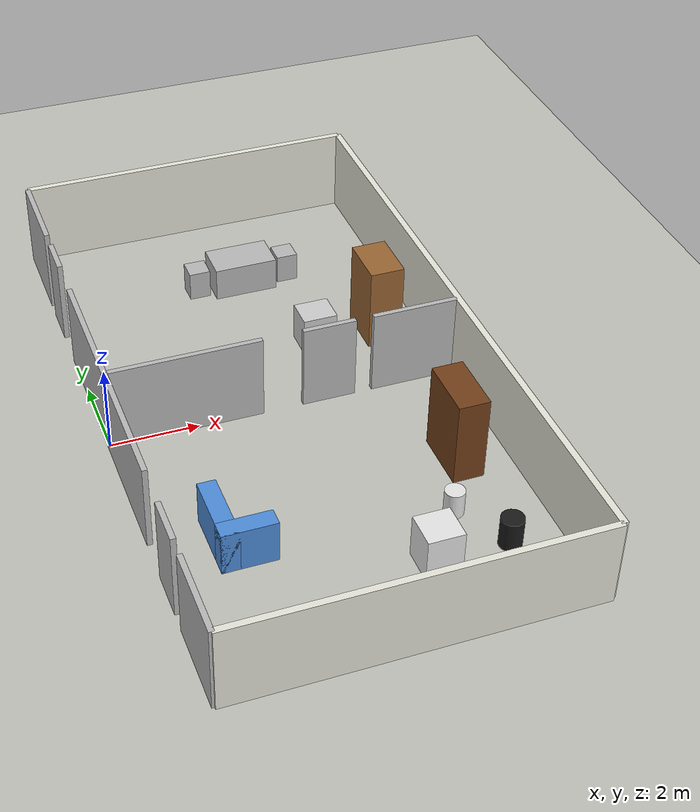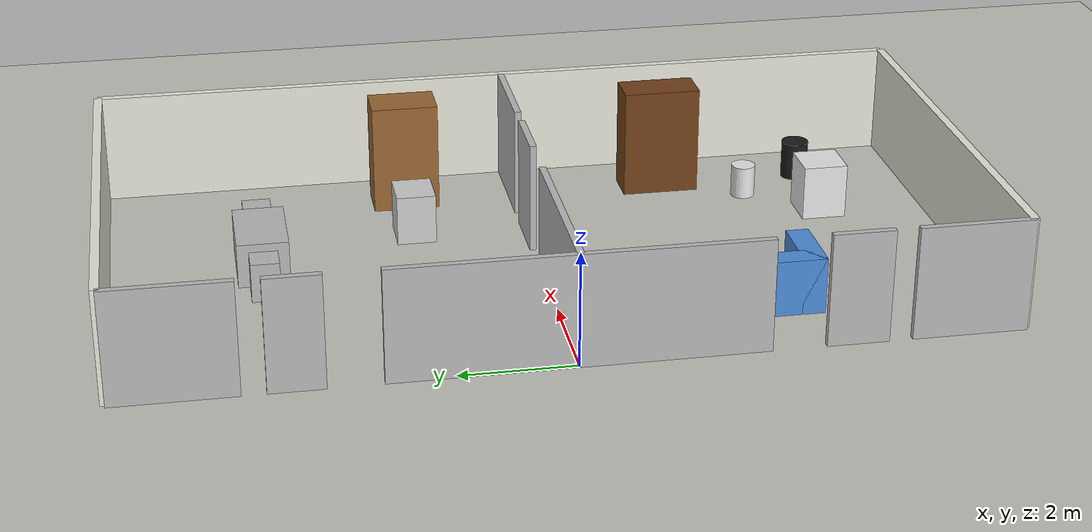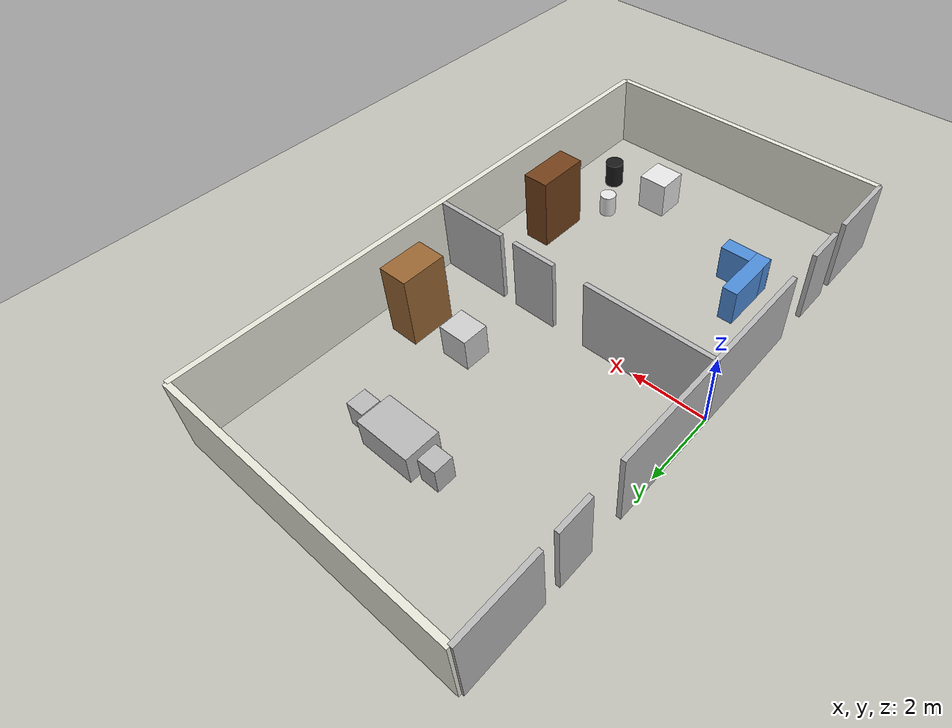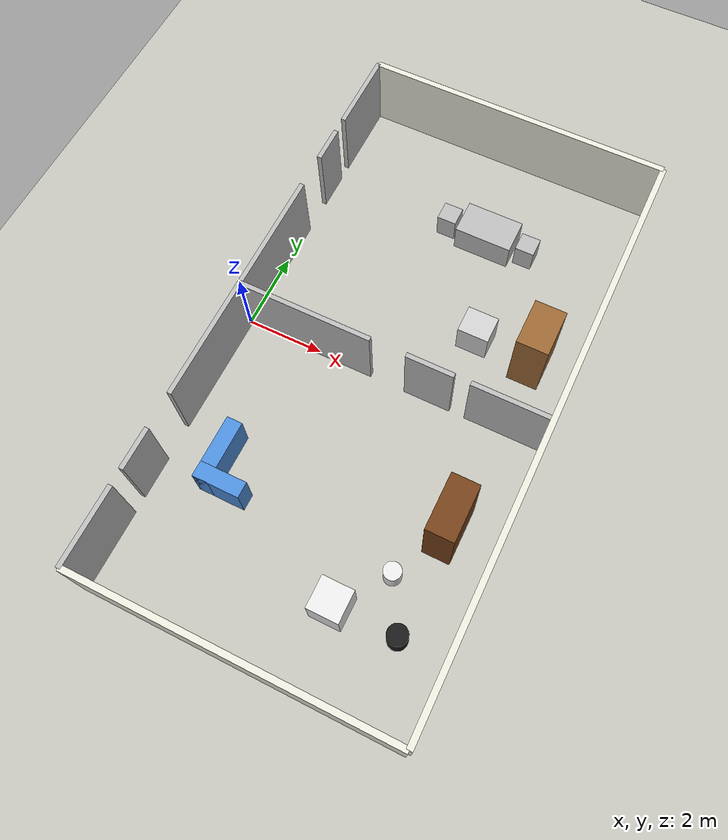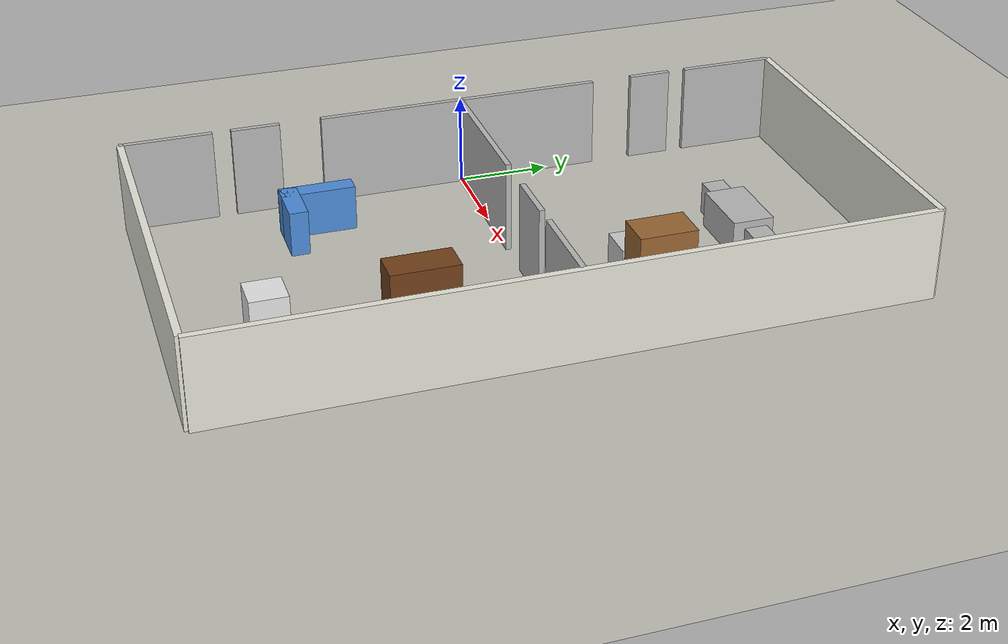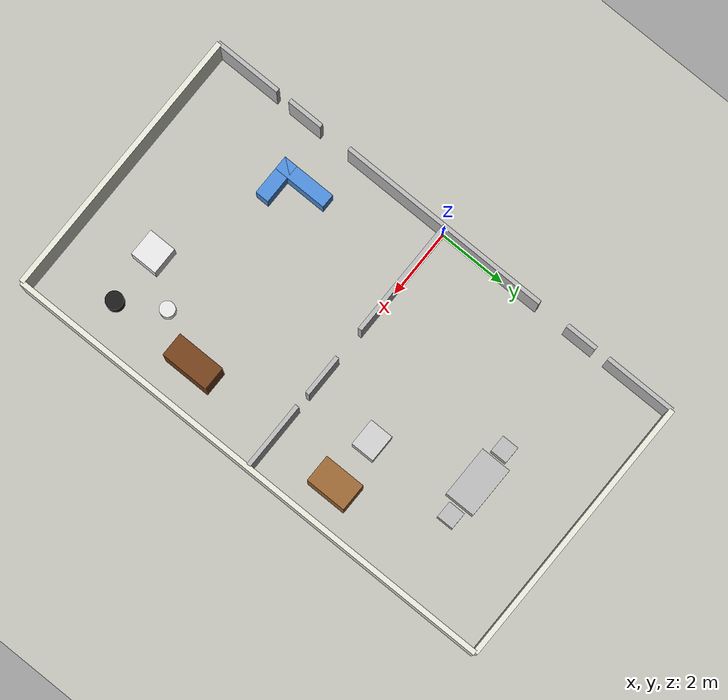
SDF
<?xml version="1.0" ?>
<sdf version="1.8">
  <world name="default">
    <physics name="1ms" type="ignored">
      <max_step_size>0.001</max_step_size>
      <real_time_factor>1.0</real_time_factor>
    </physics>

    <plugin filename="ignition-gazebo-physics-system" name="ignition::gazebo::systems::Physics"/>
    <plugin filename="ignition-gazebo-user-commands-system" name="ignition::gazebo::systems::UserCommands"/>
    <plugin filename="ignition-gazebo-scene-broadcaster-system" name="ignition::gazebo::systems::SceneBroadcaster"/>
    <plugin filename="ignition-gazebo-sensors-system" name="ignition::gazebo::systems::Sensors">
      <render_engine>ogre2</render_engine>
    </plugin>
    <plugin filename="ignition-gazebo-imu-system" name="ignition::gazebo::systems::Imu"/>
    <plugin filename="ignition-gazebo-contact-system" name="ignition::gazebo::systems::Contact"/>

    <light type="directional" name="sun">
      <cast_shadows>true</cast_shadows>
      <pose>0 0 10 0 0 0</pose>
      <diffuse>0.8 0.8 0.8 1</diffuse>
      <specular>0.2 0.2 0.2 1</specular>
      <direction>-0.5 0.1 -0.9</direction>
    </light>

    <model name="ground_plane">
      <static>true</static>
      <pose>4 0 0 0 0 0</pose>
      <link name="link">
        <collision name="collision">
          <geometry><plane><normal>0 0 1</normal><size>8 15</size></plane></geometry>
        </collision>
        <visual name="visual">
          <geometry><plane><normal>0 0 1</normal><size>8 15</size></plane></geometry>
          <material>
            <ambient>0.75 0.75 0.72 1</ambient>
            <diffuse>0.75 0.75 0.72 1</diffuse>
          </material>
        </visual>
      </link>
    </model>

    <!-- Outer walls (cut down to the width/length of the two right-side rooms) -->
    <model name="wall_north"><static>true</static><pose>4 7.5 1 0 0 0</pose><link name="link"><collision name="collision"><geometry><box><size>8 0.15 2</size></box></geometry></collision><visual name="visual"><geometry><box><size>8 0.15 2</size></box></geometry><material><ambient>0.9 0.9 0.85 1</ambient><diffuse>0.9 0.9 0.85 1</diffuse></material></visual></link></model>
    <model name="wall_south"><static>true</static><pose>4 -7.5 1 0 0 0</pose><link name="link"><collision name="collision"><geometry><box><size>8 0.15 2</size></box></geometry></collision><visual name="visual"><geometry><box><size>8 0.15 2</size></box></geometry><material><ambient>0.9 0.9 0.85 1</ambient><diffuse>0.9 0.9 0.85 1</diffuse></material></visual></link></model>
    <model name="wall_east"><static>true</static><pose>8 0 1 0 0 0</pose><link name="link"><collision name="collision"><geometry><box><size>0.15 15 2</size></box></geometry></collision><visual name="visual"><geometry><box><size>0.15 15 2</size></box></geometry><material><ambient>0.9 0.9 0.85 1</ambient><diffuse>0.9 0.9 0.85 1</diffuse></material></visual></link></model>

    <!-- Inner walls: each has one 915mm door + one 400mm gap -->

    <model name="inner_wall_north_center"><static>true</static><pose>0 1.5703125 1 0 0 0</pose><link name="link"><collision name="collision"><geometry><box><size>0.12 3.140625 2</size></box></geometry></collision><visual name="visual"><geometry><box><size>0.12 3.140625 2</size></box></geometry></visual></link></model>
    <model name="inner_wall_north_outer_bottom"><static>true</static><pose>0 4.526875 1 0 0 0</pose><link name="link"><collision name="collision"><geometry><box><size>0.12 0.9425 2</size></box></geometry></collision><visual name="visual"><geometry><box><size>0.12 0.9425 2</size></box></geometry></visual></link></model>
    <model name="inner_wall_north_outer_top"><static>true</static><pose>0 6.4490625 1 0 0 0</pose><link name="link"><collision name="collision"><geometry><box><size>0.12 2.101875 2</size></box></geometry></collision><visual name="visual"><geometry><box><size>0.12 2.101875 2</size></box></geometry></visual></link></model>

    <model name="inner_wall_south_center"><static>true</static><pose>0 -1.5890625 1 0 0 0</pose><link name="link"><collision name="collision"><geometry><box><size>0.12 3.178125 2</size></box></geometry></collision><visual name="visual"><geometry><box><size>0.12 3.178125 2</size></box></geometry></visual></link></model>
    <model name="inner_wall_south_outer_top"><static>true</static><pose>0 -4.620625 1 0 0 0</pose><link name="link"><collision name="collision"><geometry><box><size>0.12 1.055 2</size></box></geometry></collision><visual name="visual"><geometry><box><size>0.12 1.055 2</size></box></geometry></visual></link></model>
    <model name="inner_wall_south_outer_bottom"><static>true</static><pose>0 -6.5365625 1 0 0 0</pose><link name="link"><collision name="collision"><geometry><box><size>0.12 1.976875 2</size></box></geometry></collision><visual name="visual"><geometry><box><size>0.12 1.976875 2</size></box></geometry></visual></link></model>

    <model name="inner_wall_east_center"><static>true</static><pose>1.7265625 0 1 0 0 0</pose><link name="link"><collision name="collision"><geometry><box><size>3.453125 0.12 2</size></box></geometry></collision><visual name="visual"><geometry><box><size>3.453125 0.12 2</size></box></geometry></visual></link></model>
    <model name="inner_wall_east_outer_left"><static>true</static><pose>4.976875 0 1 0 0 0</pose><link name="link"><collision name="collision"><geometry><box><size>1.2175 0.12 2</size></box></geometry></collision><visual name="visual"><geometry><box><size>1.2175 0.12 2</size></box></geometry></visual></link></model>
    <model name="inner_wall_east_outer_right"><static>true</static><pose>6.9678125 0 1 0 0 0</pose><link name="link"><collision name="collision"><geometry><box><size>1.964375 0.12 2</size></box></geometry></collision><visual name="visual"><geometry><box><size>1.964375 0.12 2</size></box></geometry></visual></link></model>

    <!-- Furniture simplified as boxes -->
    <model name="dining_table"><static>true</static><pose>4.5 4.8 0.4 0 0 0</pose><link name="link"><collision name="collision"><geometry><box><size>1.5 0.9 0.8</size></box></geometry></collision><visual name="visual"><geometry><box><size>1.5 0.9 0.8</size></box></geometry></visual></link></model>
    <model name="chair_1"><static>true</static><pose>3.4 4.8 0.35 0 0 0</pose><link name="link"><collision name="collision"><geometry><box><size>0.5 0.5 0.7</size></box></geometry></collision><visual name="visual"><geometry><box><size>0.5 0.5 0.7</size></box></geometry></visual></link></model>
    <model name="chair_2"><static>true</static><pose>5.6 4.8 0.35 0 0 0</pose><link name="link"><collision name="collision"><geometry><box><size>0.5 0.5 0.7</size></box></geometry></collision><visual name="visual"><geometry><box><size>0.5 0.5 0.7</size></box></geometry></visual></link></model>

    <model name="pantry"><static>true</static><pose>6.9 2.0 1.0 0 0 0</pose><link name="link"><collision name="collision"><geometry><box><size>0.8 1.2 2.0</size></box></geometry></collision><visual name="visual"><geometry><box><size>0.8 1.2 2.0</size></box></geometry><material><ambient>0.6 0.4 0.2 1</ambient><diffuse>0.6 0.4 0.2 1</diffuse></material></visual></link></model>
    <model name="dishwasher"><static>true</static><pose>5.4 2.0 0.45 0 0 0</pose><link name="link"><collision name="collision"><geometry><box><size>0.8 0.7 0.9</size></box></geometry></collision><visual name="visual"><geometry><box><size>0.8 0.7 0.9</size></box></geometry><material><ambient>0.8 0.8 0.8 1</ambient><diffuse>0.8 0.8 0.8 1</diffuse></material></visual></link></model>

    <model name="bookshelf"><static>true</static><pose>6.8 -2.8 1.0 0 0 0</pose><link name="link"><collision name="collision"><geometry><box><size>0.7 1.4 2.0</size></box></geometry></collision><visual name="visual"><geometry><box><size>0.7 1.4 2.0</size></box></geometry><material><ambient>0.45 0.25 0.1 1</ambient><diffuse>0.45 0.25 0.1 1</diffuse></material></visual></link></model>
    <model name="washing_machine"><static>true</static><pose>5.2 -5.5 0.5 0 0 0</pose><link name="link"><collision name="collision"><geometry><box><size>0.8 0.8 1.0</size></box></geometry></collision><visual name="visual"><geometry><box><size>0.8 0.8 1.0</size></box></geometry><material><ambient>0.9 0.9 0.9 1</ambient><diffuse>0.9 0.9 0.9 1</diffuse></material></visual></link></model>
    <model name="trash_bin"><static>true</static><pose>6.8 -5.5 0.35 0 0 0</pose><link name="link"><collision name="collision"><geometry><cylinder><radius>0.25</radius><length>0.7</length></cylinder></geometry></collision><visual name="visual"><geometry><cylinder><radius>0.25</radius><length>0.7</length></cylinder></geometry><material><ambient>0.1 0.1 0.1 1</ambient><diffuse>0.1 0.1 0.1 1</diffuse></material></visual></link></model>
    <model name="laundry_basket"><static>true</static><pose>6.1 -4.3 0.3 0 0 0</pose><link name="link"><collision name="collision"><geometry><cylinder><radius>0.22</radius><length>0.6</length></cylinder></geometry></collision><visual name="visual"><geometry><cylinder><radius>0.22</radius><length>0.6</length></cylinder></geometry><material><ambient>0.9 0.9 0.9 1</ambient><diffuse>0.9 0.9 0.9 1</diffuse></material></visual></link></model>

    <model name="Lcorner_arm_h"><static>true</static><pose>1.71 -4.216 0.5 0 0 0</pose><link name="link"><collision name="collision"><geometry><box><size>1.2 0.4 1.0</size></box></geometry></collision><visual name="visual"><geometry><box><size>1.2 0.4 1.0</size></box></geometry><material><ambient>0.30 0.55 0.85 1</ambient><diffuse>0.30 0.55 0.85 1</diffuse></material></visual></link></model>
    <model name="Lcorner_arm_v"><static>true</static><pose>1.31 -3.616 0.5 0 0 0</pose><link name="link"><collision name="collision"><geometry><box><size>0.4 1.6 1.0</size></box></geometry></collision><visual name="visual"><geometry><box><size>0.4 1.6 1.0</size></box></geometry><material><ambient>0.30 0.55 0.85 1</ambient><diffuse>0.30 0.55 0.85 1</diffuse></material></visual></link></model>
  </world>
</sdf>
